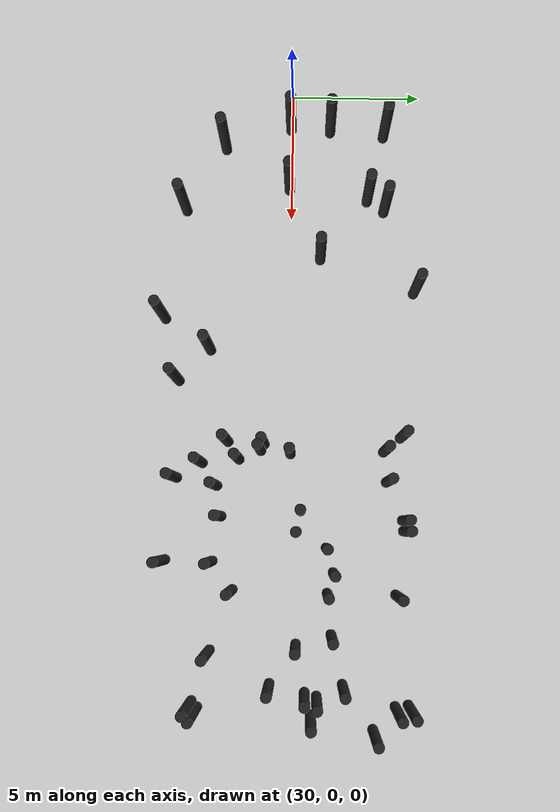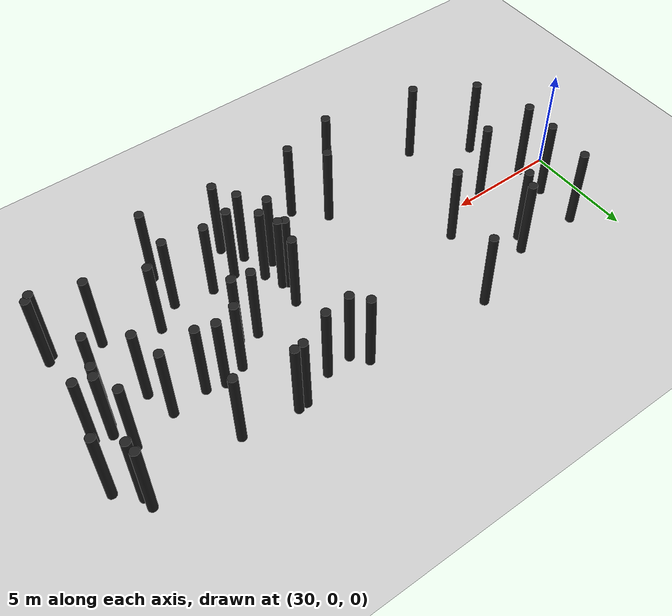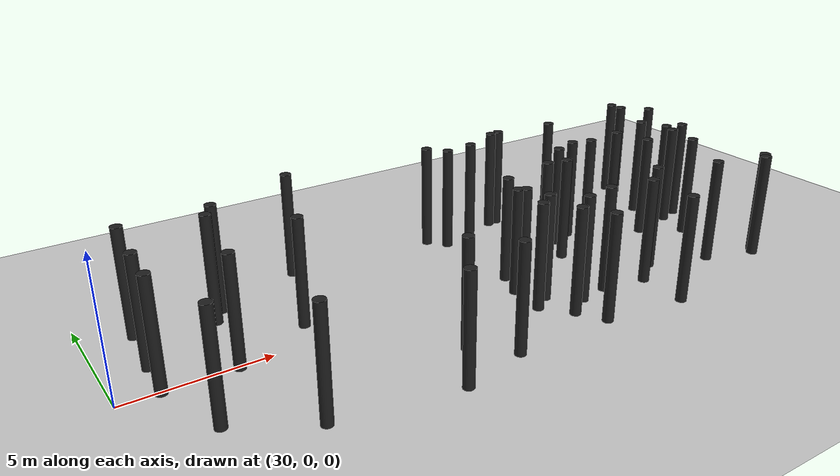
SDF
<sdf version="1.5">
 <world name="default">
  <model name="ground_plane">
   <static>1</static>
   <link name="link">
    <collision name="collision">
     <geometry><plane><normal>0 0 1</normal><size>200 200</size></plane></geometry>
     <surface><friction><ode><mu>100</mu><mu2>50</mu2></ode></friction></surface>
    </collision>
    <visual name="visual">
     <cast_shadows>0</cast_shadows>
     <geometry><plane><normal>0 0 1</normal><size>200 200</size></plane></geometry>
     <material>
      <script><uri>file://media/materials/scripts/gazebo.material</uri><name>Gazebo/Grey</name></script>
     </material>
    </visual>
   </link>
  </model>
  <model name="forest_clone_0">
   <pose>36.6186 1.15635 -0.002302 0 -0 0</pose>
   <static>1</static>
   <link name="cylinder::link">
    <inertial>
     <mass>1</mass>
     <inertia><ixx>0.083</ixx><ixy>0</ixy><ixz>0</ixz><iyy>0.083</iyy><iyz>0</iyz><izz>0.083</izz></inertia>
    </inertial>
    <collision name="collision">
     <geometry><cylinder><radius>0.2</radius><length>4</length></cylinder></geometry>
    </collision>
    <visual name="visual">
     <geometry><cylinder><radius>0.2</radius><length>4</length></cylinder></geometry>
     <material>
      <script><uri>file://media/materials/scripts/gazebo.material</uri><name>Gazebo/Black</name></script>
     </material>
    </visual>
    <pose>0 0 2 0 -0 0</pose>
   </link>
  </model>
  <model name="forest_clone_1">
   <pose>53.0873 -0.587766 0.001862 0 -0 0</pose>
   <static>1</static>
   <link name="cylinder::link">
    <inertial>
     <mass>1</mass>
     <inertia><ixx>0.083</ixx><ixy>0</ixy><ixz>0</ixz><iyy>0.083</iyy><iyz>0</iyz><izz>0.083</izz></inertia>
    </inertial>
    <collision name="collision">
     <geometry><cylinder><radius>0.2</radius><length>4</length></cylinder></geometry>
    </collision>
    <visual name="visual">
     <geometry><cylinder><radius>0.2</radius><length>4</length></cylinder></geometry>
     <material>
      <script><uri>file://media/materials/scripts/gazebo.material</uri><name>Gazebo/Black</name></script>
     </material>
    </visual>
    <pose>0 0 2 0 -0 0</pose>
   </link>
  </model>
  <model name="forest_clone_4">
   <pose>53.9948 -3.33298 -0.002268 0 -0 0</pose>
   <static>1</static>
   <link name="cylinder::link">
    <inertial>
     <mass>1</mass>
     <inertia><ixx>0.083</ixx><ixy>0</ixy><ixz>0</ixz><iyy>0.083</iyy><iyz>0</iyz><izz>0.083</izz></inertia>
    </inertial>
    <collision name="collision">
     <geometry><cylinder><radius>0.2</radius><length>4</length></cylinder></geometry>
    </collision>
    <visual name="visual">
     <geometry><cylinder><radius>0.2</radius><length>4</length></cylinder></geometry>
     <material>
      <script><uri>file://media/materials/scripts/gazebo.material</uri><name>Gazebo/Black</name></script>
     </material>
    </visual>
    <pose>0 0 2 0 -0 0</pose>
   </link>
  </model>
  <model name="forest_clone_8">
   <pose>54.2438 1.00165 -0.004068 0 -0 0</pose>
   <static>1</static>
   <link name="cylinder::link">
    <inertial>
     <mass>1</mass>
     <inertia><ixx>0.083</ixx><ixy>0</ixy><ixz>0</ixz><iyy>0.083</iyy><iyz>0</iyz><izz>0.083</izz></inertia>
    </inertial>
    <collision name="collision">
     <geometry><cylinder><radius>0.2</radius><length>4</length></cylinder></geometry>
    </collision>
    <visual name="visual">
     <geometry><cylinder><radius>0.2</radius><length>4</length></cylinder></geometry>
     <material>
      <script><uri>file://media/materials/scripts/gazebo.material</uri><name>Gazebo/Black</name></script>
     </material>
    </visual>
    <pose>0 0 2 0 -0 0</pose>
   </link>
  </model>
  <model name="forest_clone_16">
   <pose>47.9173 1.52354 -0.003943 0 -0 0</pose>
   <static>1</static>
   <link name="cylinder::link">
    <inertial>
     <mass>1</mass>
     <inertia><ixx>0.083</ixx><ixy>0</ixy><ixz>0</ixz><iyy>0.083</iyy><iyz>0</iyz><izz>0.083</izz></inertia>
    </inertial>
    <collision name="collision">
     <geometry><cylinder><radius>0.2</radius><length>4</length></cylinder></geometry>
    </collision>
    <visual name="visual">
     <geometry><cylinder><radius>0.2</radius><length>4</length></cylinder></geometry>
     <material>
      <script><uri>file://media/materials/scripts/gazebo.material</uri><name>Gazebo/Black</name></script>
     </material>
    </visual>
    <pose>0 0 2 0 -0 0</pose>
   </link>
  </model>
  <model name="forest_clone_17">
   <pose>51.2139 1.74782 0.00405 0 -0 0</pose>
   <static>1</static>
   <link name="cylinder::link">
    <inertial>
     <mass>1</mass>
     <inertia><ixx>0.083</ixx><ixy>0</ixy><ixz>0</ixz><iyy>0.083</iyy><iyz>0</iyz><izz>0.083</izz></inertia>
    </inertial>
    <collision name="collision">
     <geometry><cylinder><radius>0.2</radius><length>4</length></cylinder></geometry>
    </collision>
    <visual name="visual">
     <geometry><cylinder><radius>0.2</radius><length>4</length></cylinder></geometry>
     <material>
      <script><uri>file://media/materials/scripts/gazebo.material</uri><name>Gazebo/Black</name></script>
     </material>
    </visual>
    <pose>0 0 2 0 -0 0</pose>
   </link>
  </model>
  <model name="forest_clone_19">
   <pose>46.7562 -2.54993 0.003689 0 -0 0</pose>
   <static>1</static>
   <link name="cylinder::link">
    <inertial>
     <mass>1</mass>
     <inertia><ixx>0.083</ixx><ixy>0</ixy><ixz>0</ixz><iyy>0.083</iyy><iyz>0</iyz><izz>0.083</izz></inertia>
    </inertial>
    <collision name="collision">
     <geometry><cylinder><radius>0.2</radius><length>4</length></cylinder></geometry>
    </collision>
    <visual name="visual">
     <geometry><cylinder><radius>0.2</radius><length>4</length></cylinder></geometry>
     <material>
      <script><uri>file://media/materials/scripts/gazebo.material</uri><name>Gazebo/Black</name></script>
     </material>
    </visual>
    <pose>0 0 2 0 -0 0</pose>
   </link>
  </model>
  <model name="forest_clone_21">
   <pose>44.7057 -3.31949 5.8e-05 0 -0 0</pose>
   <static>1</static>
   <link name="cylinder::link">
    <inertial>
     <mass>1</mass>
     <inertia><ixx>0.083</ixx><ixy>0</ixy><ixz>0</ixz><iyy>0.083</iyy><iyz>0</iyz><izz>0.083</izz></inertia>
    </inertial>
    <collision name="collision">
     <geometry><cylinder><radius>0.2</radius><length>4</length></cylinder></geometry>
    </collision>
    <visual name="visual">
     <geometry><cylinder><radius>0.2</radius><length>4</length></cylinder></geometry>
     <material>
      <script><uri>file://media/materials/scripts/gazebo.material</uri><name>Gazebo/Black</name></script>
     </material>
    </visual>
    <pose>0 0 2 0 -0 0</pose>
   </link>
  </model>
  <model name="forest_clone_22">
   <pose>44.1997 3.70877 0.002893 0 -0 0</pose>
   <static>1</static>
   <link name="cylinder::link">
    <inertial>
     <mass>1</mass>
     <inertia><ixx>0.083</ixx><ixy>0</ixy><ixz>0</ixz><iyy>0.083</iyy><iyz>0</iyz><izz>0.083</izz></inertia>
    </inertial>
    <collision name="collision">
     <geometry><cylinder><radius>0.2</radius><length>4</length></cylinder></geometry>
    </collision>
    <visual name="visual">
     <geometry><cylinder><radius>0.2</radius><length>4</length></cylinder></geometry>
     <material>
      <script><uri>file://media/materials/scripts/gazebo.material</uri><name>Gazebo/Black</name></script>
     </material>
    </visual>
    <pose>0 0 2 0 -0 0</pose>
   </link>
  </model>
  <model name="forest_clone_24">
   <pose>48.4517 -4.68981 0.00207 0 -0 0</pose>
   <static>1</static>
   <link name="cylinder::link">
    <inertial>
     <mass>1</mass>
     <inertia><ixx>0.083</ixx><ixy>0</ixy><ixz>0</ixz><iyy>0.083</iyy><iyz>0</iyz><izz>0.083</izz></inertia>
    </inertial>
    <collision name="collision">
     <geometry><cylinder><radius>0.2</radius><length>4</length></cylinder></geometry>
    </collision>
    <visual name="visual">
     <geometry><cylinder><radius>0.2</radius><length>4</length></cylinder></geometry>
     <material>
      <script><uri>file://media/materials/scripts/gazebo.material</uri><name>Gazebo/Black</name></script>
     </material>
    </visual>
    <pose>0 0 2 0 -0 0</pose>
   </link>
  </model>
  <model name="forest_clone_26">
   <pose>44.3149 0.095188 -0.002215 0 -0 0</pose>
   <static>1</static>
   <link name="cylinder::link">
    <inertial>
     <mass>1</mass>
     <inertia><ixx>0.083</ixx><ixy>0</ixy><ixz>0</ixz><iyy>0.083</iyy><iyz>0</iyz><izz>0.083</izz></inertia>
    </inertial>
    <collision name="collision">
     <geometry><cylinder><radius>0.2</radius><length>4</length></cylinder></geometry>
    </collision>
    <visual name="visual">
     <geometry><cylinder><radius>0.2</radius><length>4</length></cylinder></geometry>
     <material>
      <script><uri>file://media/materials/scripts/gazebo.material</uri><name>Gazebo/Black</name></script>
     </material>
    </visual>
    <pose>0 0 2 0 -0 0</pose>
   </link>
  </model>
  <model name="forest_clone_27">
   <pose>34.2549 2.97276 -0.001591 0 -0 0</pose>
   <static>1</static>
   <link name="cylinder::link">
    <inertial>
     <mass>1</mass>
     <inertia><ixx>0.083</ixx><ixy>0</ixy><ixz>0</ixz><iyy>0.083</iyy><iyz>0</iyz><izz>0.083</izz></inertia>
    </inertial>
    <collision name="collision">
     <geometry><cylinder><radius>0.2</radius><length>4</length></cylinder></geometry>
    </collision>
    <visual name="visual">
     <geometry><cylinder><radius>0.2</radius><length>4</length></cylinder></geometry>
     <material>
      <script><uri>file://media/materials/scripts/gazebo.material</uri><name>Gazebo/Black</name></script>
     </material>
    </visual>
    <pose>0 0 2 0 -0 0</pose>
   </link>
  </model>
  <model name="forest_clone_30">
   <pose>53.7739 -3.54947 -0.000682 0 -0 0</pose>
   <static>1</static>
   <link name="cylinder::link">
    <inertial>
     <mass>1</mass>
     <inertia><ixx>0.083</ixx><ixy>0</ixy><ixz>0</ixz><iyy>0.083</iyy><iyz>0</iyz><izz>0.083</izz></inertia>
    </inertial>
    <collision name="collision">
     <geometry><cylinder><radius>0.2</radius><length>4</length></cylinder></geometry>
    </collision>
    <visual name="visual">
     <geometry><cylinder><radius>0.2</radius><length>4</length></cylinder></geometry>
     <material>
      <script><uri>file://media/materials/scripts/gazebo.material</uri><name>Gazebo/Black</name></script>
     </material>
    </visual>
    <pose>0 0 2 0 -0 0</pose>
   </link>
  </model>
  <model name="forest_clone_31">
   <pose>31.4471 1.48323 -0.003509 0 -0 0</pose>
   <static>1</static>
   <link name="cylinder::link">
    <inertial>
     <mass>1</mass>
     <inertia><ixx>0.083</ixx><ixy>0</ixy><ixz>0</ixz><iyy>0.083</iyy><iyz>0</iyz><izz>0.083</izz></inertia>
    </inertial>
    <collision name="collision">
     <geometry><cylinder><radius>0.2</radius><length>4</length></cylinder></geometry>
    </collision>
    <visual name="visual">
     <geometry><cylinder><radius>0.2</radius><length>4</length></cylinder></geometry>
     <material>
      <script><uri>file://media/materials/scripts/gazebo.material</uri><name>Gazebo/Black</name></script>
     </material>
    </visual>
    <pose>0 0 2 0 -0 0</pose>
   </link>
  </model>
  <model name="forest_clone_33">
   <pose>48.8591 1.80171 0.003193 0 -0 0</pose>
   <static>1</static>
   <link name="cylinder::link">
    <inertial>
     <mass>1</mass>
     <inertia><ixx>0.083</ixx><ixy>0</ixy><ixz>0</ixz><iyy>0.083</iyy><iyz>0</iyz><izz>0.083</izz></inertia>
    </inertial>
    <collision name="collision">
     <geometry><cylinder><radius>0.2</radius><length>4</length></cylinder></geometry>
    </collision>
    <visual name="visual">
     <geometry><cylinder><radius>0.2</radius><length>4</length></cylinder></geometry>
     <material>
      <script><uri>file://media/materials/scripts/gazebo.material</uri><name>Gazebo/Black</name></script>
     </material>
    </visual>
    <pose>0 0 2 0 -0 0</pose>
   </link>
  </model>
  <model name="forest_clone_37">
   <pose>43.8723 -2.33321 0.002737 0 -0 0</pose>
   <static>1</static>
   <link name="cylinder::link">
    <inertial>
     <mass>1</mass>
     <inertia><ixx>0.083</ixx><ixy>0</ixy><ixz>0</ixz><iyy>0.083</iyy><iyz>0</iyz><izz>0.083</izz></inertia>
    </inertial>
    <collision name="collision">
     <geometry><cylinder><radius>0.2</radius><length>4</length></cylinder></geometry>
    </collision>
    <visual name="visual">
     <geometry><cylinder><radius>0.2</radius><length>4</length></cylinder></geometry>
     <material>
      <script><uri>file://media/materials/scripts/gazebo.material</uri><name>Gazebo/Black</name></script>
     </material>
    </visual>
    <pose>0 0 2 0 -0 0</pose>
   </link>
  </model>
  <model name="forest_clone_40">
   <pose>45.5813 -2.73667 0.004571 0 -0 0</pose>
   <static>1</static>
   <link name="cylinder::link">
    <inertial>
     <mass>1</mass>
     <inertia><ixx>0.083</ixx><ixy>0</ixy><ixz>0</ixz><iyy>0.083</iyy><iyz>0</iyz><izz>0.083</izz></inertia>
    </inertial>
    <collision name="collision">
     <geometry><cylinder><radius>0.2</radius><length>4</length></cylinder></geometry>
    </collision>
    <visual name="visual">
     <geometry><cylinder><radius>0.2</radius><length>4</length></cylinder></geometry>
     <material>
      <script><uri>file://media/materials/scripts/gazebo.material</uri><name>Gazebo/Black</name></script>
     </material>
    </visual>
    <pose>0 0 2 0 -0 0</pose>
   </link>
  </model>
  <model name="forest_clone_41">
   <pose>49.5556 -2.06738 -0.004467 0 -0 0</pose>
   <static>1</static>
   <link name="cylinder::link">
    <inertial>
     <mass>1</mass>
     <inertia><ixx>0.083</ixx><ixy>0</ixy><ixz>0</ixz><iyy>0.083</iyy><iyz>0</iyz><izz>0.083</izz></inertia>
    </inertial>
    <collision name="collision">
     <geometry><cylinder><radius>0.2</radius><length>4</length></cylinder></geometry>
    </collision>
    <visual name="visual">
     <geometry><cylinder><radius>0.2</radius><length>4</length></cylinder></geometry>
     <material>
      <script><uri>file://media/materials/scripts/gazebo.material</uri><name>Gazebo/Black</name></script>
     </material>
    </visual>
    <pose>0 0 2 0 -0 0</pose>
   </link>
  </model>
  <model name="forest_clone_42">
   <pose>32.1973 -2.61731 -0.000572 0 -0 0</pose>
   <static>1</static>
   <link name="cylinder::link">
    <inertial>
     <mass>1</mass>
     <inertia><ixx>0.083</ixx><ixy>0</ixy><ixz>0</ixz><iyy>0.083</iyy><iyz>0</iyz><izz>0.083</izz></inertia>
    </inertial>
    <collision name="collision">
     <geometry><cylinder><radius>0.2</radius><length>4</length></cylinder></geometry>
    </collision>
    <visual name="visual">
     <geometry><cylinder><radius>0.2</radius><length>4</length></cylinder></geometry>
     <material>
      <script><uri>file://media/materials/scripts/gazebo.material</uri><name>Gazebo/Black</name></script>
     </material>
    </visual>
    <pose>0 0 2 0 -0 0</pose>
   </link>
  </model>
  <model name="forest_clone_45">
   <pose>40.2809 -3.08541 0.000737 0 -0 0</pose>
   <static>1</static>
   <link name="cylinder::link">
    <inertial>
     <mass>1</mass>
     <inertia><ixx>0.083</ixx><ixy>0</ixy><ixz>0</ixz><iyy>0.083</iyy><iyz>0</iyz><izz>0.083</izz></inertia>
    </inertial>
    <collision name="collision">
     <geometry><cylinder><radius>0.2</radius><length>4</length></cylinder></geometry>
    </collision>
    <visual name="visual">
     <geometry><cylinder><radius>0.2</radius><length>4</length></cylinder></geometry>
     <material>
      <script><uri>file://media/materials/scripts/gazebo.material</uri><name>Gazebo/Black</name></script>
     </material>
    </visual>
    <pose>0 0 2 0 -0 0</pose>
   </link>
  </model>
  <model name="forest_clone_47">
   <pose>46.8326 4.46381 -0.004421 0 -0 0</pose>
   <static>1</static>
   <link name="cylinder::link">
    <inertial>
     <mass>1</mass>
     <inertia><ixx>0.083</ixx><ixy>0</ixy><ixz>0</ixz><iyy>0.083</iyy><iyz>0</iyz><izz>0.083</izz></inertia>
    </inertial>
    <collision name="collision">
     <geometry><cylinder><radius>0.2</radius><length>4</length></cylinder></geometry>
    </collision>
    <visual name="visual">
     <geometry><cylinder><radius>0.2</radius><length>4</length></cylinder></geometry>
     <material>
      <script><uri>file://media/materials/scripts/gazebo.material</uri><name>Gazebo/Black</name></script>
     </material>
    </visual>
    <pose>0 0 2 0 -0 0</pose>
   </link>
  </model>
  <model name="forest_clone_50">
   <pose>33.8144 -0.086384 -0.002482 0 -0 0</pose>
   <static>1</static>
   <link name="cylinder::link">
    <inertial>
     <mass>1</mass>
     <inertia><ixx>0.083</ixx><ixy>0</ixy><ixz>0</ixz><iyy>0.083</iyy><iyz>0</iyz><izz>0.083</izz></inertia>
    </inertial>
    <collision name="collision">
     <geometry><cylinder><radius>0.2</radius><length>4</length></cylinder></geometry>
    </collision>
    <visual name="visual">
     <geometry><cylinder><radius>0.2</radius><length>4</length></cylinder></geometry>
     <material>
      <script><uri>file://media/materials/scripts/gazebo.material</uri><name>Gazebo/Black</name></script>
     </material>
    </visual>
    <pose>0 0 2 0 -0 0</pose>
   </link>
  </model>
  <model name="forest_clone_58">
   <pose>31.3579 -0.059241 -0.003216 0 -0 0</pose>
   <static>1</static>
   <link name="cylinder::link">
    <inertial>
     <mass>1</mass>
     <inertia><ixx>0.083</ixx><ixy>0</ixy><ixz>0</ixz><iyy>0.083</iyy><iyz>0</iyz><izz>0.083</izz></inertia>
    </inertial>
    <collision name="collision">
     <geometry><cylinder><radius>0.2</radius><length>4</length></cylinder></geometry>
    </collision>
    <visual name="visual">
     <geometry><cylinder><radius>0.2</radius><length>4</length></cylinder></geometry>
     <material>
      <script><uri>file://media/materials/scripts/gazebo.material</uri><name>Gazebo/Black</name></script>
     </material>
    </visual>
    <pose>0 0 2 0 -0 0</pose>
   </link>
  </model>
  <model name="forest_clone_60">
   <pose>43.9522 -0.92737 -0.003387 0 -0 0</pose>
   <static>1</static>
   <link name="cylinder::link">
    <inertial>
     <mass>1</mass>
     <inertia><ixx>0.083</ixx><ixy>0</ixy><ixz>0</ixz><iyy>0.083</iyy><iyz>0</iyz><izz>0.083</izz></inertia>
    </inertial>
    <collision name="collision">
     <geometry><cylinder><radius>0.2</radius><length>4</length></cylinder></geometry>
    </collision>
    <visual name="visual">
     <geometry><cylinder><radius>0.2</radius><length>4</length></cylinder></geometry>
     <material>
      <script><uri>file://media/materials/scripts/gazebo.material</uri><name>Gazebo/Black</name></script>
     </material>
    </visual>
    <pose>0 0 2 0 -0 0</pose>
   </link>
  </model>
  <model name="forest_clone_61">
   <pose>41.5047 -4.29283 0.004625 0 -0 0</pose>
   <static>1</static>
   <link name="cylinder::link">
    <inertial>
     <mass>1</mass>
     <inertia><ixx>0.083</ixx><ixy>0</ixy><ixz>0</ixz><iyy>0.083</iyy><iyz>0</iyz><izz>0.083</izz></inertia>
    </inertial>
    <collision name="collision">
     <geometry><cylinder><radius>0.2</radius><length>4</length></cylinder></geometry>
    </collision>
    <visual name="visual">
     <geometry><cylinder><radius>0.2</radius><length>4</length></cylinder></geometry>
     <material>
      <script><uri>file://media/materials/scripts/gazebo.material</uri><name>Gazebo/Black</name></script>
     </material>
    </visual>
    <pose>0 0 2 0 -0 0</pose>
   </link>
  </model>
  <model name="forest_clone_62">
   <pose>48.4763 -2.86006 0.002774 0 -0 0</pose>
   <static>1</static>
   <link name="cylinder::link">
    <inertial>
     <mass>1</mass>
     <inertia><ixx>0.083</ixx><ixy>0</ixy><ixz>0</ixz><iyy>0.083</iyy><iyz>0</iyz><izz>0.083</izz></inertia>
    </inertial>
    <collision name="collision">
     <geometry><cylinder><radius>0.2</radius><length>4</length></cylinder></geometry>
    </collision>
    <visual name="visual">
     <geometry><cylinder><radius>0.2</radius><length>4</length></cylinder></geometry>
     <material>
      <script><uri>file://media/materials/scripts/gazebo.material</uri><name>Gazebo/Black</name></script>
     </material>
    </visual>
    <pose>0 0 2 0 -0 0</pose>
   </link>
  </model>
  <model name="forest_clone_64">
   <pose>43.6472 4.35618 0.000734 0 -0 0</pose>
   <static>1</static>
   <link name="cylinder::link">
    <inertial>
     <mass>1</mass>
     <inertia><ixx>0.083</ixx><ixy>0</ixy><ixz>0</ixz><iyy>0.083</iyy><iyz>0</iyz><izz>0.083</izz></inertia>
    </inertial>
    <collision name="collision">
     <geometry><cylinder><radius>0.2</radius><length>4</length></cylinder></geometry>
    </collision>
    <visual name="visual">
     <geometry><cylinder><radius>0.2</radius><length>4</length></cylinder></geometry>
     <material>
      <script><uri>file://media/materials/scripts/gazebo.material</uri><name>Gazebo/Black</name></script>
     </material>
    </visual>
    <pose>0 0 2 0 -0 0</pose>
   </link>
  </model>
  <model name="forest_clone_65">
   <pose>45.3633 3.82373 0.00324 0 -0 0</pose>
   <static>1</static>
   <link name="cylinder::link">
    <inertial>
     <mass>1</mass>
     <inertia><ixx>0.083</ixx><ixy>0</ixy><ixz>0</ixz><iyy>0.083</iyy><iyz>0</iyz><izz>0.083</izz></inertia>
    </inertial>
    <collision name="collision">
     <geometry><cylinder><radius>0.2</radius><length>4</length></cylinder></geometry>
    </collision>
    <visual name="visual">
     <geometry><cylinder><radius>0.2</radius><length>4</length></cylinder></geometry>
     <material>
      <script><uri>file://media/materials/scripts/gazebo.material</uri><name>Gazebo/Black</name></script>
     </material>
    </visual>
    <pose>0 0 2 0 -0 0</pose>
   </link>
  </model>
  <model name="forest_clone_66">
   <pose>53.4038 0.754985 -0.004641 0 -0 0</pose>
   <static>1</static>
   <link name="cylinder::link">
    <inertial>
     <mass>1</mass>
     <inertia><ixx>0.083</ixx><ixy>0</ixy><ixz>0</ixz><iyy>0.083</iyy><iyz>0</iyz><izz>0.083</izz></inertia>
    </inertial>
    <collision name="collision">
     <geometry><cylinder><radius>0.2</radius><length>4</length></cylinder></geometry>
    </collision>
    <visual name="visual">
     <geometry><cylinder><radius>0.2</radius><length>4</length></cylinder></geometry>
     <material>
      <script><uri>file://media/materials/scripts/gazebo.material</uri><name>Gazebo/Black</name></script>
     </material>
    </visual>
    <pose>0 0 2 0 -0 0</pose>
   </link>
  </model>
  <model name="forest_clone_67">
   <pose>47.235 4.50455 -0.004643 0 -0 0</pose>
   <static>1</static>
   <link name="cylinder::link">
    <inertial>
     <mass>1</mass>
     <inertia><ixx>0.083</ixx><ixy>0</ixy><ixz>0</ixz><iyy>0.083</iyy><iyz>0</iyz><izz>0.083</izz></inertia>
    </inertial>
    <collision name="collision">
     <geometry><cylinder><radius>0.2</radius><length>4</length></cylinder></geometry>
    </collision>
    <visual name="visual">
     <geometry><cylinder><radius>0.2</radius><length>4</length></cylinder></geometry>
     <material>
      <script><uri>file://media/materials/scripts/gazebo.material</uri><name>Gazebo/Black</name></script>
     </material>
    </visual>
    <pose>0 0 2 0 -0 0</pose>
   </link>
  </model>
  <model name="forest_clone_69">
   <pose>34.6805 3.63474 0.002379 0 -0 0</pose>
   <static>1</static>
   <link name="cylinder::link">
    <inertial>
     <mass>1</mass>
     <inertia><ixx>0.083</ixx><ixy>0</ixy><ixz>0</ixz><iyy>0.083</iyy><iyz>0</iyz><izz>0.083</izz></inertia>
    </inertial>
    <collision name="collision">
     <geometry><cylinder><radius>0.2</radius><length>4</length></cylinder></geometry>
    </collision>
    <visual name="visual">
     <geometry><cylinder><radius>0.2</radius><length>4</length></cylinder></geometry>
     <material>
      <script><uri>file://media/materials/scripts/gazebo.material</uri><name>Gazebo/Black</name></script>
     </material>
    </visual>
    <pose>0 0 2 0 -0 0</pose>
   </link>
  </model>
  <model name="forest_clone_70">
   <pose>46.5162 0.523306 0.004149 0 -0 0</pose>
   <static>1</static>
   <link name="cylinder::link">
    <inertial>
     <mass>1</mass>
     <inertia><ixx>0.083</ixx><ixy>0</ixy><ixz>0</ixz><iyy>0.083</iyy><iyz>0</iyz><izz>0.083</izz></inertia>
    </inertial>
    <collision name="collision">
     <geometry><cylinder><radius>0.2</radius><length>4</length></cylinder></geometry>
    </collision>
    <visual name="visual">
     <geometry><cylinder><radius>0.2</radius><length>4</length></cylinder></geometry>
     <material>
      <script><uri>file://media/materials/scripts/gazebo.material</uri><name>Gazebo/Black</name></script>
     </material>
    </visual>
    <pose>0 0 2 0 -0 0</pose>
   </link>
  </model>
  <model name="forest_clone_73">
   <pose>53.8202 4.72353 0.002338 0 -0 0</pose>
   <static>1</static>
   <link name="cylinder::link">
    <inertial>
     <mass>1</mass>
     <inertia><ixx>0.083</ixx><ixy>0</ixy><ixz>0</ixz><iyy>0.083</iyy><iyz>0</iyz><izz>0.083</izz></inertia>
    </inertial>
    <collision name="collision">
     <geometry><cylinder><radius>0.2</radius><length>4</length></cylinder></geometry>
    </collision>
    <visual name="visual">
     <geometry><cylinder><radius>0.2</radius><length>4</length></cylinder></geometry>
     <material>
      <script><uri>file://media/materials/scripts/gazebo.material</uri><name>Gazebo/Black</name></script>
     </material>
    </visual>
    <pose>0 0 2 0 -0 0</pose>
   </link>
  </model>
  <model name="forest_clone_74">
   <pose>45.2868 -4.30182 0.004773 0 -0 0</pose>
   <static>1</static>
   <link name="cylinder::link">
    <inertial>
     <mass>1</mass>
     <inertia><ixx>0.083</ixx><ixy>0</ixy><ixz>0</ixz><iyy>0.083</iyy><iyz>0</iyz><izz>0.083</izz></inertia>
    </inertial>
    <collision name="collision">
     <geometry><cylinder><radius>0.2</radius><length>4</length></cylinder></geometry>
    </collision>
    <visual name="visual">
     <geometry><cylinder><radius>0.2</radius><length>4</length></cylinder></geometry>
     <material>
      <script><uri>file://media/materials/scripts/gazebo.material</uri><name>Gazebo/Black</name></script>
     </material>
    </visual>
    <pose>0 0 2 0 -0 0</pose>
   </link>
  </model>
  <model name="forest_clone_75">
   <pose>44.5516 -1.88915 -0.000411 0 -0 0</pose>
   <static>1</static>
   <link name="cylinder::link">
    <inertial>
     <mass>1</mass>
     <inertia><ixx>0.083</ixx><ixy>0</ixy><ixz>0</ixz><iyy>0.083</iyy><iyz>0</iyz><izz>0.083</izz></inertia>
    </inertial>
    <collision name="collision">
     <geometry><cylinder><radius>0.2</radius><length>4</length></cylinder></geometry>
    </collision>
    <visual name="visual">
     <geometry><cylinder><radius>0.2</radius><length>4</length></cylinder></geometry>
     <material>
      <script><uri>file://media/materials/scripts/gazebo.material</uri><name>Gazebo/Black</name></script>
     </material>
    </visual>
    <pose>0 0 2 0 -0 0</pose>
   </link>
  </model>
  <model name="forest_clone_78">
   <pose>34.7166 -4.14216 0.002613 0 -0 0</pose>
   <static>1</static>
   <link name="cylinder::link">
    <inertial>
     <mass>1</mass>
     <inertia><ixx>0.083</ixx><ixy>0</ixy><ixz>0</ixz><iyy>0.083</iyy><iyz>0</iyz><izz>0.083</izz></inertia>
    </inertial>
    <collision name="collision">
     <geometry><cylinder><radius>0.2</radius><length>4</length></cylinder></geometry>
    </collision>
    <visual name="visual">
     <geometry><cylinder><radius>0.2</radius><length>4</length></cylinder></geometry>
     <material>
      <script><uri>file://media/materials/scripts/gazebo.material</uri><name>Gazebo/Black</name></script>
     </material>
    </visual>
    <pose>0 0 2 0 -0 0</pose>
   </link>
  </model>
  <model name="forest_clone_80">
   <pose>49.6781 4.21743 -0.002124 0 -0 0</pose>
   <static>1</static>
   <link name="cylinder::link">
    <inertial>
     <mass>1</mass>
     <inertia><ixx>0.083</ixx><ixy>0</ixy><ixz>0</ixz><iyy>0.083</iyy><iyz>0</iyz><izz>0.083</izz></inertia>
    </inertial>
    <collision name="collision">
     <geometry><cylinder><radius>0.2</radius><length>4</length></cylinder></geometry>
    </collision>
    <visual name="visual">
     <geometry><cylinder><radius>0.2</radius><length>4</length></cylinder></geometry>
     <material>
      <script><uri>file://media/materials/scripts/gazebo.material</uri><name>Gazebo/Black</name></script>
     </material>
    </visual>
    <pose>0 0 2 0 -0 0</pose>
   </link>
  </model>
  <model name="forest_clone_81">
   <pose>37.9332 4.83701 0.002574 0 -0 0</pose>
   <static>1</static>
   <link name="cylinder::link">
    <inertial>
     <mass>1</mass>
     <inertia><ixx>0.083</ixx><ixy>0</ixy><ixz>0</ixz><iyy>0.083</iyy><iyz>0</iyz><izz>0.083</izz></inertia>
    </inertial>
    <collision name="collision">
     <geometry><cylinder><radius>0.2</radius><length>4</length></cylinder></geometry>
    </collision>
    <visual name="visual">
     <geometry><cylinder><radius>0.2</radius><length>4</length></cylinder></geometry>
     <material>
      <script><uri>file://media/materials/scripts/gazebo.material</uri><name>Gazebo/Black</name></script>
     </material>
    </visual>
    <pose>0 0 2 0 -0 0</pose>
   </link>
  </model>
  <model name="forest_clone_82">
   <pose>53.0835 2.20043 -0.0026 0 -0 0</pose>
   <static>1</static>
   <link name="cylinder::link">
    <inertial>
     <mass>1</mass>
     <inertia><ixx>0.083</ixx><ixy>0</ixy><ixz>0</ixz><iyy>0.083</iyy><iyz>0</iyz><izz>0.083</izz></inertia>
    </inertial>
    <collision name="collision">
     <geometry><cylinder><radius>0.2</radius><length>4</length></cylinder></geometry>
    </collision>
    <visual name="visual">
     <geometry><cylinder><radius>0.2</radius><length>4</length></cylinder></geometry>
     <material>
      <script><uri>file://media/materials/scripts/gazebo.material</uri><name>Gazebo/Black</name></script>
     </material>
    </visual>
    <pose>0 0 2 0 -0 0</pose>
   </link>
  </model>
  <model name="forest_clone_83">
   <pose>31.6269 3.59525 -0.004327 0 -0 0</pose>
   <static>1</static>
   <link name="cylinder::link">
    <inertial>
     <mass>1</mass>
     <inertia><ixx>0.083</ixx><ixy>0</ixy><ixz>0</ixz><iyy>0.083</iyy><iyz>0</iyz><izz>0.083</izz></inertia>
    </inertial>
    <collision name="collision">
     <geometry><cylinder><radius>0.2</radius><length>4</length></cylinder></geometry>
    </collision>
    <visual name="visual">
     <geometry><cylinder><radius>0.2</radius><length>4</length></cylinder></geometry>
     <material>
      <script><uri>file://media/materials/scripts/gazebo.material</uri><name>Gazebo/Black</name></script>
     </material>
    </visual>
    <pose>0 0 2 0 -0 0</pose>
   </link>
  </model>
  <model name="forest_clone_85">
   <pose>51.8541 -2.89589 -0.000297 0 -0 0</pose>
   <static>1</static>
   <link name="cylinder::link">
    <inertial>
     <mass>1</mass>
     <inertia><ixx>0.083</ixx><ixy>0</ixy><ixz>0</ixz><iyy>0.083</iyy><iyz>0</iyz><izz>0.083</izz></inertia>
    </inertial>
    <collision name="collision">
     <geometry><cylinder><radius>0.2</radius><length>4</length></cylinder></geometry>
    </collision>
    <visual name="visual">
     <geometry><cylinder><radius>0.2</radius><length>4</length></cylinder></geometry>
     <material>
      <script><uri>file://media/materials/scripts/gazebo.material</uri><name>Gazebo/Black</name></script>
     </material>
    </visual>
    <pose>0 0 2 0 -0 0</pose>
   </link>
  </model>
  <model name="forest_clone_86">
   <pose>51.591 0.399792 0.002104 0 -0 0</pose>
   <static>1</static>
   <link name="cylinder::link">
    <inertial>
     <mass>1</mass>
     <inertia><ixx>0.083</ixx><ixy>0</ixy><ixz>0</ixz><iyy>0.083</iyy><iyz>0</iyz><izz>0.083</izz></inertia>
    </inertial>
    <collision name="collision">
     <geometry><cylinder><radius>0.2</radius><length>4</length></cylinder></geometry>
    </collision>
    <visual name="visual">
     <geometry><cylinder><radius>0.2</radius><length>4</length></cylinder></geometry>
     <material>
      <script><uri>file://media/materials/scripts/gazebo.material</uri><name>Gazebo/Black</name></script>
     </material>
    </visual>
    <pose>0 0 2 0 -0 0</pose>
   </link>
  </model>
  <model name="forest_clone_87">
   <pose>49.6493 1.58354 0.000142 0 -0 0</pose>
   <static>1</static>
   <link name="cylinder::link">
    <inertial>
     <mass>1</mass>
     <inertia><ixx>0.083</ixx><ixy>0</ixy><ixz>0</ixz><iyy>0.083</iyy><iyz>0</iyz><izz>0.083</izz></inertia>
    </inertial>
    <collision name="collision">
     <geometry><cylinder><radius>0.2</radius><length>4</length></cylinder></geometry>
    </collision>
    <visual name="visual">
     <geometry><cylinder><radius>0.2</radius><length>4</length></cylinder></geometry>
     <material>
      <script><uri>file://media/materials/scripts/gazebo.material</uri><name>Gazebo/Black</name></script>
     </material>
    </visual>
    <pose>0 0 2 0 -0 0</pose>
   </link>
  </model>
  <model name="forest_clone_88">
   <pose>47.3095 0.372778 0.002643 0 -0 0</pose>
   <static>1</static>
   <link name="cylinder::link">
    <inertial>
     <mass>1</mass>
     <inertia><ixx>0.083</ixx><ixy>0</ixy><ixz>0</ixz><iyy>0.083</iyy><iyz>0</iyz><izz>0.083</izz></inertia>
    </inertial>
    <collision name="collision">
     <geometry><cylinder><radius>0.2</radius><length>4</length></cylinder></geometry>
    </collision>
    <visual name="visual">
     <geometry><cylinder><radius>0.2</radius><length>4</length></cylinder></geometry>
     <material>
      <script><uri>file://media/materials/scripts/gazebo.material</uri><name>Gazebo/Black</name></script>
     </material>
    </visual>
    <pose>0 0 2 0 -0 0</pose>
   </link>
  </model>
  <model name="forest_clone_90">
   <pose>39.0577 -4.88126 0.003825 0 -0 0</pose>
   <static>1</static>
   <link name="cylinder::link">
    <inertial>
     <mass>1</mass>
     <inertia><ixx>0.083</ixx><ixy>0</ixy><ixz>0</ixz><iyy>0.083</iyy><iyz>0</iyz><izz>0.083</izz></inertia>
    </inertial>
    <collision name="collision">
     <geometry><cylinder><radius>0.2</radius><length>4</length></cylinder></geometry>
    </collision>
    <visual name="visual">
     <geometry><cylinder><radius>0.2</radius><length>4</length></cylinder></geometry>
     <material>
      <script><uri>file://media/materials/scripts/gazebo.material</uri><name>Gazebo/Black</name></script>
     </material>
    </visual>
    <pose>0 0 2 0 -0 0</pose>
   </link>
  </model>
  <model name="forest_clone_92">
   <pose>54.7512 3.38015 0.004444 0 -0 0</pose>
   <static>1</static>
   <link name="cylinder::link">
    <inertial>
     <mass>1</mass>
     <inertia><ixx>0.083</ixx><ixy>0</ixy><ixz>0</ixz><iyy>0.083</iyy><iyz>0</iyz><izz>0.083</izz></inertia>
    </inertial>
    <collision name="collision">
     <geometry><cylinder><radius>0.2</radius><length>4</length></cylinder></geometry>
    </collision>
    <visual name="visual">
     <geometry><cylinder><radius>0.2</radius><length>4</length></cylinder></geometry>
     <material>
      <script><uri>file://media/materials/scripts/gazebo.material</uri><name>Gazebo/Black</name></script>
     </material>
    </visual>
    <pose>0 0 2 0 -0 0</pose>
   </link>
  </model>
  <model name="forest_clone_94">
   <pose>44.2045 -1.05142 0.001948 0 -0 0</pose>
   <static>1</static>
   <link name="cylinder::link">
    <inertial>
     <mass>1</mass>
     <inertia><ixx>0.083</ixx><ixy>0</ixy><ixz>0</ixz><iyy>0.083</iyy><iyz>0</iyz><izz>0.083</izz></inertia>
    </inertial>
    <collision name="collision">
     <geometry><cylinder><radius>0.2</radius><length>4</length></cylinder></geometry>
    </collision>
    <visual name="visual">
     <geometry><cylinder><radius>0.2</radius><length>4</length></cylinder></geometry>
     <material>
      <script><uri>file://media/materials/scripts/gazebo.material</uri><name>Gazebo/Black</name></script>
     </material>
    </visual>
    <pose>0 0 2 0 -0 0</pose>
   </link>
  </model>
  <model name="forest_clone_96">
   <pose>53.5385 1.21424 0.003694 0 -0 0</pose>
   <static>1</static>
   <link name="cylinder::link">
    <inertial>
     <mass>1</mass>
     <inertia><ixx>0.083</ixx><ixy>0</ixy><ixz>0</ixz><iyy>0.083</iyy><iyz>0</iyz><izz>0.083</izz></inertia>
    </inertial>
    <collision name="collision">
     <geometry><cylinder><radius>0.2</radius><length>4</length></cylinder></geometry>
    </collision>
    <visual name="visual">
     <geometry><cylinder><radius>0.2</radius><length>4</length></cylinder></geometry>
     <material>
      <script><uri>file://media/materials/scripts/gazebo.material</uri><name>Gazebo/Black</name></script>
     </material>
    </visual>
    <pose>0 0 2 0 -0 0</pose>
   </link>
  </model>
  <model name="forest_clone_98">
   <pose>53.8851 4.22173 0.001656 0 -0 0</pose>
   <static>1</static>
   <link name="cylinder::link">
    <inertial>
     <mass>1</mass>
     <inertia><ixx>0.083</ixx><ixy>0</ixy><ixz>0</ixz><iyy>0.083</iyy><iyz>0</iyz><izz>0.083</izz></inertia>
    </inertial>
    <collision name="collision">
     <geometry><cylinder><radius>0.2</radius><length>4</length></cylinder></geometry>
    </collision>
    <visual name="visual">
     <geometry><cylinder><radius>0.2</radius><length>4</length></cylinder></geometry>
     <material>
      <script><uri>file://media/materials/scripts/gazebo.material</uri><name>Gazebo/Black</name></script>
     </material>
    </visual>
    <pose>0 0 2 0 -0 0</pose>
   </link>
  </model>
 </world>
</sdf>
